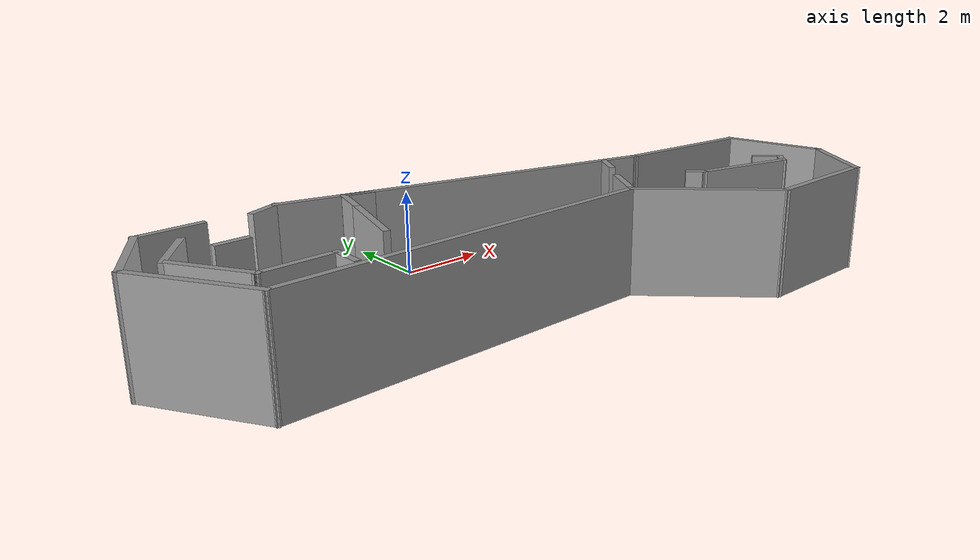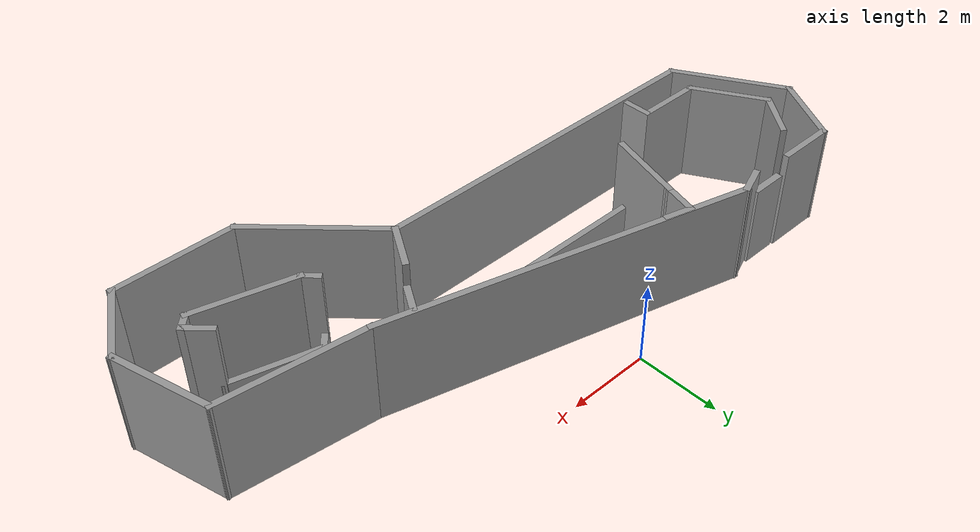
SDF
<?xml version='1.0'?>
<sdf version='1.7'>
  <model name='Untitled'>
    <pose>0.748456 -3.4824 0 0 -0 0</pose>
    <link name='Door_0'>
      <collision name='Door_0_Collision'>
        <geometry>
          <box>
            <size>0.9 0.17 2</size>
          </box>
        </geometry>
        <pose>0 0 1 0 -0 0</pose>
      </collision>
      <visual name='Door_0_Visual'>
        <pose>0 0 1 0 -0 0</pose>
        <geometry>
          <box>
            <size>0.9 0.17 2</size>
          </box>
        </geometry>
        <material>
          <script>
            <uri>file://media/materials/scripts/gazebo.material</uri>
            <name>Gazebo/Grey</name>
          </script>
        </material>
      </visual>
      <pose>-5.34352 3.01888 0 0 -0 0</pose>
    </link>
    <link name='Wall_0'>
      <collision name='Wall_0_Collision'>
        <geometry>
          <box>
            <size>9 0.15 2.5</size>
          </box>
        </geometry>
        <pose>0 0 1.25 0 -0 0</pose>
      </collision>
      <visual name='Wall_0_Visual'>
        <pose>0 0 1.25 0 -0 0</pose>
        <geometry>
          <box>
            <size>9 0.15 2.5</size>
          </box>
        </geometry>
        <material>
          <script>
            <uri>file://media/materials/scripts/gazebo.material</uri>
            <name>Gazebo/Grey</name>
          </script>
          <ambient>1 1 1 1</ambient>
        </material>
        <meta>
          <layer>0</layer>
        </meta>
      </visual>
      <pose>-0.001197 2.04594 0 0 -0 2.87979</pose>
    </link>
    <link name='Wall_11'>
      <collision name='Wall_11_Collision'>
        <geometry>
          <box>
            <size>9 0.15 2.5</size>
          </box>
        </geometry>
        <pose>0 0 1.25 0 -0 0</pose>
      </collision>
      <visual name='Wall_11_Visual'>
        <pose>0 0 1.25 0 -0 0</pose>
        <geometry>
          <box>
            <size>9 0.15 2.5</size>
          </box>
        </geometry>
        <material>
          <script>
            <uri>file://media/materials/scripts/gazebo.material</uri>
            <name>Gazebo/Grey</name>
          </script>
          <ambient>1 1 1 1</ambient>
        </material>
        <meta>
          <layer>0</layer>
        </meta>
      </visual>
      <pose>-2.3594 -1.00752 0 0 -0 0</pose>
    </link>
    <link name='Wall_12'>
      <collision name='Wall_12_Collision'>
        <geometry>
          <box>
            <size>3.5 0.15 2.5</size>
          </box>
        </geometry>
        <pose>0 0 1.25 0 -0 0</pose>
      </collision>
      <visual name='Wall_12_Visual'>
        <pose>0 0 1.25 0 -0 0</pose>
        <geometry>
          <box>
            <size>3.5 0.15 2.5</size>
          </box>
        </geometry>
        <material>
          <script>
            <uri>file://media/materials/scripts/gazebo.material</uri>
            <name>Gazebo/Grey</name>
          </script>
          <ambient>1 1 1 1</ambient>
        </material>
        <meta>
          <layer>0</layer>
        </meta>
      </visual>
      <pose>3.25 -2.19193 0 0 -0 -0.785398</pose>
    </link>
    <link name='Wall_14'>
      <collision name='Wall_14_Collision'>
        <geometry>
          <box>
            <size>3 0.15 2.5</size>
          </box>
        </geometry>
        <pose>0 0 1.25 0 -0 0</pose>
      </collision>
      <visual name='Wall_14_Visual'>
        <pose>0 0 1.25 0 -0 0</pose>
        <geometry>
          <box>
            <size>3 0.15 2.5</size>
          </box>
        </geometry>
        <material>
          <script>
            <uri>file://media/materials/scripts/gazebo.material</uri>
            <name>Gazebo/Grey</name>
          </script>
          <ambient>1 1 1 1</ambient>
        </material>
        <meta>
          <layer>0</layer>
        </meta>
      </visual>
      <pose>5.8594 -3.37633 0 0 -0 0</pose>
    </link>
    <link name='Wall_15'>
      <collision name='Wall_15_Collision'>
        <geometry>
          <box>
            <size>2 0.15 2.5</size>
          </box>
        </geometry>
        <pose>0 0 1.25 0 -0 0</pose>
      </collision>
      <visual name='Wall_15_Visual'>
        <pose>0 0 1.25 0 -0 0</pose>
        <geometry>
          <box>
            <size>2 0.15 2.5</size>
          </box>
        </geometry>
        <material>
          <script>
            <uri>file://media/materials/scripts/gazebo.material</uri>
            <name>Gazebo/Grey</name>
          </script>
          <ambient>1 1 1 1</ambient>
        </material>
        <meta>
          <layer>0</layer>
        </meta>
      </visual>
      <pose>7.7469 -2.57526 0 0 -0 1.0472</pose>
    </link>
    <link name='Wall_16'>
      <collision name='Wall_16_Collision'>
        <geometry>
          <box>
            <size>2.5 0.15 2.5</size>
          </box>
        </geometry>
        <pose>0 0 1.25 0 -0 0</pose>
      </collision>
      <visual name='Wall_16_Visual'>
        <pose>0 0 1.25 0 -0 0</pose>
        <geometry>
          <box>
            <size>2.5 0.15 2.5</size>
          </box>
        </geometry>
        <material>
          <script>
            <uri>file://media/materials/scripts/gazebo.material</uri>
            <name>Gazebo/Grey</name>
          </script>
          <ambient>1 1 1 1</ambient>
        </material>
        <meta>
          <layer>0</layer>
        </meta>
      </visual>
      <pose>7.90529 -0.639223 0 0 -0 1.8326</pose>
    </link>
    <link name='Wall_17'>
      <collision name='Wall_17_Collision'>
        <geometry>
          <box>
            <size>3.5027 0.15 2.5</size>
          </box>
        </geometry>
        <pose>0 0 1.25 0 -0 0</pose>
      </collision>
      <visual name='Wall_17_Visual'>
        <pose>0 0 1.25 0 -0 0</pose>
        <geometry>
          <box>
            <size>3.5027 0.15 2.5</size>
          </box>
        </geometry>
        <material>
          <script>
            <uri>file://media/materials/scripts/gazebo.material</uri>
            <name>Gazebo/Grey</name>
          </script>
          <ambient>1 1 1 1</ambient>
        </material>
        <meta>
          <layer>0</layer>
        </meta>
      </visual>
      <pose>5.9371 0.698203 0 0 -0 3.02052</pose>
    </link>
    <link name='Wall_19'>
      <collision name='Wall_19_Collision'>
        <geometry>
          <box>
            <size>2.00811 0.15 2.5</size>
          </box>
        </geometry>
        <pose>0 0 1.25 0 -0 0</pose>
      </collision>
      <visual name='Wall_19_Visual'>
        <pose>0 0 1.25 0 -0 0</pose>
        <geometry>
          <box>
            <size>2.00811 0.15 2.5</size>
          </box>
        </geometry>
        <material>
          <script>
            <uri>file://media/materials/scripts/gazebo.material</uri>
            <name>Gazebo/Grey</name>
          </script>
          <ambient>1 1 1 1</ambient>
        </material>
        <meta>
          <layer>0</layer>
        </meta>
      </visual>
      <pose>-3.32561 1.12343 0 0 -0 -1.84841</pose>
    </link>
    <link name='Wall_2'>
      <collision name='Wall_2_Collision'>
        <geometry>
          <box>
            <size>1.5 0.15 2.5</size>
          </box>
        </geometry>
        <pose>0 0 1.25 0 -0 0</pose>
      </collision>
      <visual name='Wall_2_Visual'>
        <pose>0 0 1.25 0 -0 0</pose>
        <geometry>
          <box>
            <size>1.5 0.15 2.5</size>
          </box>
        </geometry>
        <material>
          <script>
            <uri>file://media/materials/scripts/gazebo.material</uri>
            <name>Gazebo/Grey</name>
          </script>
          <ambient>1 1 1 1</ambient>
        </material>
        <meta>
          <layer>0</layer>
        </meta>
      </visual>
      <pose>-6.6094 3.06279 0 0 -0 3.14159</pose>
    </link>
    <link name='Wall_22'>
      <collision name='Wall_22_Collision'>
        <geometry>
          <box>
            <size>3.5 0.15 1</size>
          </box>
        </geometry>
        <pose>0 0 0.5 0 -0 0</pose>
      </collision>
      <visual name='Wall_22_Visual'>
        <pose>0 0 0.5 0 -0 0</pose>
        <geometry>
          <box>
            <size>3.5 0.15 1</size>
          </box>
        </geometry>
        <material>
          <script>
            <uri>file://media/materials/scripts/gazebo.material</uri>
            <name>Gazebo/Grey</name>
          </script>
          <ambient>1 1 1 1</ambient>
        </material>
        <meta>
          <layer>0</layer>
        </meta>
      </visual>
      <pose>-1.75384 0.568398 0 0 -0 0</pose>
    </link>
    <link name='Wall_23'>
      <collision name='Wall_23_Collision'>
        <geometry>
          <box>
            <size>0.506194 0.15 1</size>
          </box>
        </geometry>
        <pose>0 0 0.5 0 -0 0</pose>
      </collision>
      <visual name='Wall_23_Visual'>
        <pose>0 0 0.5 0 -0 0</pose>
        <geometry>
          <box>
            <size>0.506194 0.15 1</size>
          </box>
        </geometry>
        <material>
          <script>
            <uri>file://media/materials/scripts/gazebo.material</uri>
            <name>Gazebo/Grey</name>
          </script>
          <ambient>1 1 1 1</ambient>
        </material>
        <meta>
          <layer>0</layer>
        </meta>
      </visual>
      <pose>-0.070252 0.744899 0 0 -0 1.43678</pose>
    </link>
    <link name='Wall_24'>
      <collision name='Wall_24_Collision'>
        <geometry>
          <box>
            <size>3.3 0.15 1</size>
          </box>
        </geometry>
        <pose>0 0 0.5 0 -0 0</pose>
      </collision>
      <visual name='Wall_24_Visual'>
        <pose>0 0 0.5 0 -0 0</pose>
        <geometry>
          <box>
            <size>3.3 0.15 1</size>
          </box>
        </geometry>
        <material>
          <script>
            <uri>file://media/materials/scripts/gazebo.material</uri>
            <name>Gazebo/Grey</name>
          </script>
          <ambient>1 1 1 1</ambient>
        </material>
        <meta>
          <layer>0</layer>
        </meta>
      </visual>
      <pose>-1.56446 1.3419 0 0 -0 2.87136</pose>
    </link>
    <link name='Wall_26'>
      <collision name='Wall_26_Collision'>
        <geometry>
          <box>
            <size>0.75 0.15 2.5</size>
          </box>
        </geometry>
        <pose>0 0 1.25 0 -0 0</pose>
      </collision>
      <visual name='Wall_26_Visual'>
        <pose>0 0 1.25 0 -0 0</pose>
        <geometry>
          <box>
            <size>0.75 0.15 2.5</size>
          </box>
        </geometry>
        <material>
          <script>
            <uri>file://media/materials/scripts/gazebo.material</uri>
            <name>Gazebo/Grey</name>
          </script>
          <ambient>1 1 1 1</ambient>
        </material>
        <meta>
          <layer>0</layer>
        </meta>
      </visual>
      <pose>-2.57314 2.71099 0 0 -0 2.87989</pose>
    </link>
    <link name='Wall_27'>
      <collision name='Wall_27_Collision'>
        <geometry>
          <box>
            <size>0.949259 0.15 2.5</size>
          </box>
        </geometry>
        <pose>0 0 1.25 0 -0 0</pose>
      </collision>
      <visual name='Wall_27_Visual'>
        <pose>0 0 1.25 0 -0 0</pose>
        <geometry>
          <box>
            <size>0.949259 0.15 2.5</size>
          </box>
        </geometry>
        <material>
          <script>
            <uri>file://media/materials/scripts/gazebo.material</uri>
            <name>Gazebo/Grey</name>
          </script>
          <ambient>1 1 1 1</ambient>
        </material>
        <meta>
          <layer>0</layer>
        </meta>
      </visual>
      <pose>-2.96691 2.40274 0 0 -0 -1.83429</pose>
    </link>
    <link name='Wall_29'>
      <collision name='Wall_29_Collision'>
        <geometry>
          <box>
            <size>1.25 0.15 2.5</size>
          </box>
        </geometry>
        <pose>0 0 1.25 0 -0 0</pose>
      </collision>
      <visual name='Wall_29_Visual'>
        <pose>0 0 1.25 0 -0 0</pose>
        <geometry>
          <box>
            <size>1.25 0.15 2.5</size>
          </box>
        </geometry>
        <material>
          <script>
            <uri>file://media/materials/scripts/gazebo.material</uri>
            <name>Gazebo/Grey</name>
          </script>
          <ambient>1 1 1 1</ambient>
        </material>
        <meta>
          <layer>0</layer>
        </meta>
      </visual>
      <pose>2.3406 -0.53121 0 0 -0 1.0472</pose>
    </link>
    <link name='Wall_3'>
      <collision name='Wall_3_Collision'>
        <geometry>
          <box>
            <size>2 0.15 2.5</size>
          </box>
        </geometry>
        <pose>0 0 1.25 0 -0 0</pose>
      </collision>
      <visual name='Wall_3_Visual'>
        <pose>0 0 1.25 0 -0 0</pose>
        <geometry>
          <box>
            <size>2 0.15 2.5</size>
          </box>
        </geometry>
        <material>
          <script>
            <uri>file://media/materials/scripts/gazebo.material</uri>
            <name>Gazebo/Grey</name>
          </script>
          <ambient>1 1 1 1</ambient>
        </material>
        <meta>
          <layer>0</layer>
        </meta>
      </visual>
      <pose>-7.7469 2.26172 0 0 -0 -2.0944</pose>
    </link>
    <link name='Wall_31'>
      <collision name='Wall_31_Collision'>
        <geometry>
          <box>
            <size>0.75 0.15 2.5</size>
          </box>
        </geometry>
        <pose>0 0 1.25 0 -0 0</pose>
      </collision>
      <visual name='Wall_31_Visual'>
        <pose>0 0 1.25 0 -0 0</pose>
        <geometry>
          <box>
            <size>0.75 0.15 2.5</size>
          </box>
        </geometry>
        <material>
          <script>
            <uri>file://media/materials/scripts/gazebo.material</uri>
            <name>Gazebo/Grey</name>
          </script>
          <ambient>1 1 1 1</ambient>
        </material>
        <meta>
          <layer>0</layer>
        </meta>
      </visual>
      <pose>3.2336 0.814425 0 0 -0 -2.0944</pose>
    </link>
    <link name='Wall_33'>
      <collision name='Wall_33_Collision'>
        <geometry>
          <box>
            <size>2.25 0.15 1</size>
          </box>
        </geometry>
        <pose>0 0 0.5 0 -0 0</pose>
      </collision>
      <visual name='Wall_33_Visual'>
        <pose>0 0 0.5 0 -0 0</pose>
        <geometry>
          <box>
            <size>2.25 0.15 1</size>
          </box>
        </geometry>
        <material>
          <script>
            <uri>file://media/materials/scripts/gazebo.material</uri>
            <name>Gazebo/Grey</name>
          </script>
          <ambient>1 1 1 1</ambient>
        </material>
        <meta>
          <layer>0</layer>
        </meta>
      </visual>
      <pose>5.43804 -0.849601 0 0 -0 -0.261952</pose>
    </link>
    <link name='Wall_34'>
      <collision name='Wall_34_Collision'>
        <geometry>
          <box>
            <size>0.75 0.15 2.5</size>
          </box>
        </geometry>
        <pose>0 0 1.25 0 -0 0</pose>
      </collision>
      <visual name='Wall_34_Visual'>
        <pose>0 0 1.25 0 -0 0</pose>
        <geometry>
          <box>
            <size>0.75 0.15 2.5</size>
          </box>
        </geometry>
        <material>
          <script>
            <uri>file://media/materials/scripts/gazebo.material</uri>
            <name>Gazebo/Grey</name>
          </script>
          <ambient>1 1 1 1</ambient>
        </material>
        <meta>
          <layer>0</layer>
        </meta>
      </visual>
      <pose>6.66446 -1.33351 0 0 -0 -0.785383</pose>
    </link>
    <link name='Wall_35'>
      <collision name='Wall_35_Collision'>
        <geometry>
          <box>
            <size>0.5 0.15 2.5</size>
          </box>
        </geometry>
        <pose>0 0 1.25 0 -0 0</pose>
      </collision>
      <visual name='Wall_35_Visual'>
        <pose>0 0 1.25 0 -0 0</pose>
        <geometry>
          <box>
            <size>0.5 0.15 2.5</size>
          </box>
        </geometry>
        <material>
          <script>
            <uri>file://media/materials/scripts/gazebo.material</uri>
            <name>Gazebo/Grey</name>
          </script>
          <ambient>1 1 1 1</ambient>
        </material>
        <meta>
          <layer>0</layer>
        </meta>
      </visual>
      <pose>6.75264 -1.66917 0 0 -0 -2.35619</pose>
    </link>
    <link name='Wall_36'>
      <collision name='Wall_36_Collision'>
        <geometry>
          <box>
            <size>2.5 0.15 2.5</size>
          </box>
        </geometry>
        <pose>0 0 1.25 0 -0 0</pose>
      </collision>
      <visual name='Wall_36_Visual'>
        <pose>0 0 1.25 0 -0 0</pose>
        <geometry>
          <box>
            <size>2.5 0.15 2.5</size>
          </box>
        </geometry>
        <material>
          <script>
            <uri>file://media/materials/scripts/gazebo.material</uri>
            <name>Gazebo/Grey</name>
          </script>
          <ambient>1 1 1 1</ambient>
        </material>
        <meta>
          <layer>0</layer>
        </meta>
      </visual>
      <pose>5.49393 -1.4888 0 0 -0 2.87979</pose>
    </link>
    <link name='Wall_37'>
      <collision name='Wall_37_Collision'>
        <geometry>
          <box>
            <size>0.5 0.15 2.5</size>
          </box>
        </geometry>
        <pose>0 0 1.25 0 -0 0</pose>
      </collision>
      <visual name='Wall_37_Visual'>
        <pose>0 0 1.25 0 -0 0</pose>
        <geometry>
          <box>
            <size>0.5 0.15 2.5</size>
          </box>
        </geometry>
        <material>
          <script>
            <uri>file://media/materials/scripts/gazebo.material</uri>
            <name>Gazebo/Grey</name>
          </script>
          <ambient>1 1 1 1</ambient>
        </material>
        <meta>
          <layer>0</layer>
        </meta>
      </visual>
      <pose>4.23526 -1.06114 0 0 -0 2.35688</pose>
    </link>
    <link name='Wall_38'>
      <collision name='Wall_38_Collision'>
        <geometry>
          <box>
            <size>0.626179 0.15 1</size>
          </box>
        </geometry>
        <pose>0 0 0.5 0 -0 0</pose>
      </collision>
      <visual name='Wall_38_Visual'>
        <pose>0 0 0.5 0 -0 0</pose>
        <geometry>
          <box>
            <size>0.626179 0.15 1</size>
          </box>
        </geometry>
        <material>
          <script>
            <uri>file://media/materials/scripts/gazebo.material</uri>
            <name>Gazebo/Grey</name>
          </script>
          <ambient>1 1 1 1</ambient>
        </material>
        <meta>
          <layer>0</layer>
        </meta>
      </visual>
      <pose>4.26754 -0.757601 0 0 -0 0.856706</pose>
    </link>
    <link name='Wall_41'>
      <collision name='Wall_41_Collision'>
        <geometry>
          <box>
            <size>0.817471 0.15 2.5</size>
          </box>
        </geometry>
        <pose>0 0 1.25 0 -0 0</pose>
      </collision>
      <visual name='Wall_41_Visual'>
        <pose>0 0 1.25 0 -0 0</pose>
        <geometry>
          <box>
            <size>0.817471 0.15 2.5</size>
          </box>
        </geometry>
        <material>
          <script>
            <uri>file://media/materials/scripts/gazebo.material</uri>
            <name>Gazebo/Grey</name>
          </script>
          <ambient>1 1 1 1</ambient>
        </material>
        <meta>
          <layer>0</layer>
        </meta>
      </visual>
      <pose>-4.58822 3.07488 0 0 -0 0.356072</pose>
    </link>
    <link name='Wall_43'>
      <collision name='Wall_43_Collision'>
        <geometry>
          <box>
            <size>1.39244 0.15 2.5</size>
          </box>
        </geometry>
        <pose>0 0 1.25 0 -0 0</pose>
      </collision>
      <visual name='Wall_43_Visual'>
        <pose>0 0 1.25 0 -0 0</pose>
        <geometry>
          <box>
            <size>1.39244 0.15 2.5</size>
          </box>
        </geometry>
        <material>
          <script>
            <uri>file://media/materials/scripts/gazebo.material</uri>
            <name>Gazebo/Grey</name>
          </script>
          <ambient>1 1 1 1</ambient>
        </material>
        <meta>
          <layer>0</layer>
        </meta>
      </visual>
      <pose>-7.0746 1.8865 0 0 -0 -2.23607</pose>
    </link>
    <link name='Wall_44'>
      <collision name='Wall_44_Collision'>
        <geometry>
          <box>
            <size>2 0.15 2.5</size>
          </box>
        </geometry>
        <pose>0 0 1.25 0 -0 0</pose>
      </collision>
      <visual name='Wall_44_Visual'>
        <pose>0 0 1.25 0 -0 0</pose>
        <geometry>
          <box>
            <size>2 0.15 2.5</size>
          </box>
        </geometry>
        <material>
          <script>
            <uri>file://media/materials/scripts/gazebo.material</uri>
            <name>Gazebo/Grey</name>
          </script>
          <ambient>1 1 1 1</ambient>
        </material>
        <meta>
          <layer>0</layer>
        </meta>
      </visual>
      <pose>-6.97545 0.596685 0 0 -0 -1.0472</pose>
    </link>
    <link name='Wall_47'>
      <collision name='Wall_47_Collision'>
        <geometry>
          <box>
            <size>0.15 0.15 2.5</size>
          </box>
        </geometry>
        <pose>0 0 1.25 0 -0 0</pose>
      </collision>
      <visual name='Wall_47_Visual'>
        <pose>0 0 1.25 0 -0 0</pose>
        <geometry>
          <box>
            <size>0.15 0.15 2.5</size>
          </box>
        </geometry>
        <material>
          <script>
            <uri>file://media/materials/scripts/gazebo.material</uri>
            <name>Gazebo/Grey</name>
          </script>
          <ambient>1 1 1 1</ambient>
        </material>
        <meta>
          <layer>0</layer>
        </meta>
      </visual>
      <pose>-6.53306 -0.204389 0 0 -0 0</pose>
    </link>
    <link name='Wall_49'>
      <collision name='Wall_49_Collision'>
        <geometry>
          <box>
            <size>1.75 0.15 2.5</size>
          </box>
        </geometry>
        <pose>0 0 1.25 0 -0 0</pose>
      </collision>
      <visual name='Wall_49_Visual'>
        <pose>0 0 1.25 0 -0 0</pose>
        <geometry>
          <box>
            <size>1.75 0.15 2.5</size>
          </box>
        </geometry>
        <material>
          <script>
            <uri>file://media/materials/scripts/gazebo.material</uri>
            <name>Gazebo/Grey</name>
          </script>
          <ambient>1 1 1 1</ambient>
        </material>
        <meta>
          <layer>0</layer>
        </meta>
      </visual>
      <pose>-5.73306 -0.204389 0 0 -0 0</pose>
    </link>
    <link name='Wall_5'>
      <collision name='Wall_5_Collision'>
        <geometry>
          <box>
            <size>3 0.15 2.5</size>
          </box>
        </geometry>
        <pose>0 0 1.25 0 -0 0</pose>
      </collision>
      <visual name='Wall_5_Visual'>
        <pose>0 0 1.25 0 -0 0</pose>
        <geometry>
          <box>
            <size>3 0.15 2.5</size>
          </box>
        </geometry>
        <material>
          <script>
            <uri>file://media/materials/scripts/gazebo.material</uri>
            <name>Gazebo/Grey</name>
          </script>
          <ambient>1 1 1 1</ambient>
        </material>
        <meta>
          <layer>0</layer>
        </meta>
      </visual>
      <pose>-7.4969 0.226562 0 0 -0 -1.0472</pose>
    </link>
    <link name='Wall_51'>
      <collision name='Wall_51_Collision'>
        <geometry>
          <box>
            <size>0.75 0.15 2.5</size>
          </box>
        </geometry>
        <pose>0 0 1.25 0 -0 0</pose>
      </collision>
      <visual name='Wall_51_Visual'>
        <pose>0 0 1.25 0 -0 0</pose>
        <geometry>
          <box>
            <size>0.75 0.15 2.5</size>
          </box>
        </geometry>
        <material>
          <script>
            <uri>file://media/materials/scripts/gazebo.material</uri>
            <name>Gazebo/Grey</name>
          </script>
          <ambient>1 1 1 1</ambient>
        </material>
        <meta>
          <layer>0</layer>
        </meta>
      </visual>
      <pose>-4.93306 -0.504389 0 0 -0 -1.5708</pose>
    </link>
    <static>1</static>
  </model>
</sdf>
